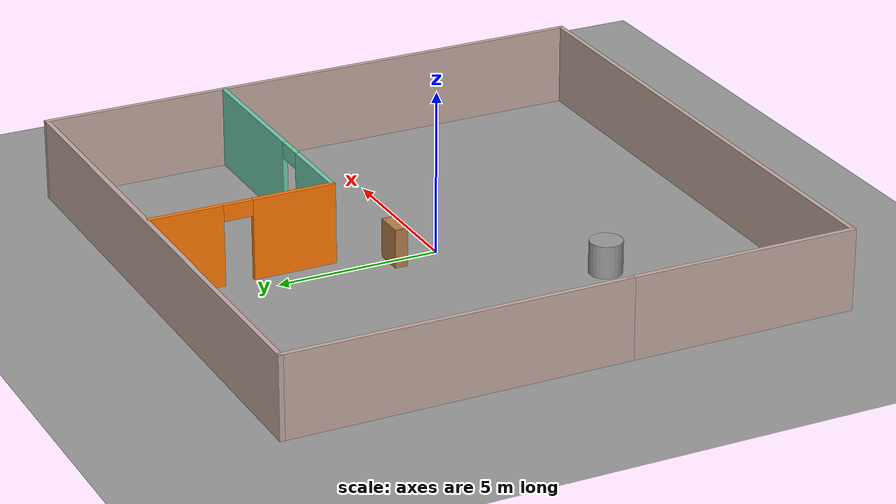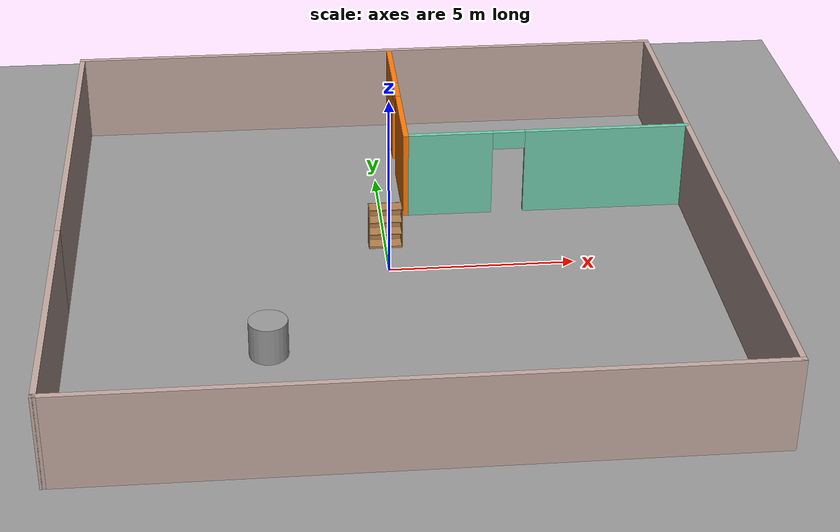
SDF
<sdf version="1.6">
 <world name="default">
  <light name="sun" type="directional">
   <pose>0 0 10 0 -0 0</pose>
   <diffuse>0.8 0.8 0.8 1</diffuse>
   <specular>0.2 0.2 0.2 1</specular>
   <attenuation>
    <range>1000</range>
    <constant>0.9</constant>
    <linear>0.01</linear>
    <quadratic>0.001</quadratic>
   </attenuation>
   <direction>0.5 0.1 -0.9</direction>
  </light>
  <scene><ambient>0.4 0.4 0.4 1</ambient><background>0.7 0.7 0.7 1</background><shadows>1</shadows></scene>
  <physics name="default_physics" default="0" type="ode">
   <max_step_size>0.01</max_step_size>
   <real_time_factor>1</real_time_factor>
   <real_time_update_rate>100</real_time_update_rate>
  </physics>
  <model name="bookshelf">
   <static>1</static>
   <link name="link">
    <inertial><mass>1</mass></inertial>
    <collision name="back">
     <pose>0 0.005 0.6 0 -0 0</pose>
     <geometry><box><size>0.9 0.01 1.2</size></box></geometry>
    </collision>
    <visual name="visual1">
     <pose>0 0.005 0.6 0 -0 0</pose>
     <geometry><box><size>0.9 0.01 1.2</size></box></geometry>
     <material>
      <script><uri>file://media/materials/scripts/gazebo.material</uri><name>Gazebo/Wood</name></script>
     </material>
    </visual>
    <collision name="left_side">
     <pose>0.45 -0.195 0.6 0 -0 0</pose>
     <geometry><box><size>0.02 0.4 1.2</size></box></geometry>
    </collision>
    <visual name="visual2">
     <pose>0.45 -0.195 0.6 0 -0 0</pose>
     <geometry><box><size>0.02 0.4 1.2</size></box></geometry>
     <material>
      <script><uri>file://media/materials/scripts/gazebo.material</uri><name>Gazebo/Wood</name></script>
     </material>
    </visual>
    <collision name="right_side">
     <pose>-0.45 -0.195 0.6 0 -0 0</pose>
     <geometry><box><size>0.02 0.4 1.2</size></box></geometry>
    </collision>
    <visual name="visual3">
     <pose>-0.45 -0.195 0.6 0 -0 0</pose>
     <geometry><box><size>0.02 0.4 1.2</size></box></geometry>
     <material>
      <script><uri>file://media/materials/scripts/gazebo.material</uri><name>Gazebo/Wood</name></script>
     </material>
    </visual>
    <collision name="bottom">
     <pose>0 -0.195 0.03 0 -0 0</pose>
     <geometry><box><size>0.88 0.4 0.06</size></box></geometry>
    </collision>
    <visual name="visual4">
     <pose>0 -0.195 0.03 0 -0 0</pose>
     <geometry><box><size>0.88 0.4 0.06</size></box></geometry>
     <material>
      <script><uri>file://media/materials/scripts/gazebo.material</uri><name>Gazebo/Wood</name></script>
     </material>
    </visual>
    <collision name="top">
     <pose>0 -0.195 1.19 0 -0 0</pose>
     <geometry><box><size>0.88 0.4 0.02</size></box></geometry>
    </collision>
    <visual name="visual5">
     <pose>0 -0.195 1.19 0 -0 0</pose>
     <geometry><box><size>0.88 0.4 0.02</size></box></geometry>
     <material>
      <script><uri>file://media/materials/scripts/gazebo.material</uri><name>Gazebo/Wood</name></script>
     </material>
    </visual>
    <collision name="low_shelf">
     <pose>0 -0.195 0.43 0 -0 0</pose>
     <geometry><box><size>0.88 0.4 0.02</size></box></geometry>
    </collision>
    <visual name="visual6">
     <pose>0 -0.195 0.43 0 -0 0</pose>
     <geometry><box><size>0.88 0.4 0.02</size></box></geometry>
     <material>
      <script><uri>file://media/materials/scripts/gazebo.material</uri><name>Gazebo/Wood</name></script>
     </material>
    </visual>
    <collision name="high_shelf">
     <pose>0 -0.195 0.8 0 -0 0</pose>
     <geometry><box><size>0.88 0.4 0.02</size></box></geometry>
    </collision>
    <visual name="visual7">
     <pose>0 -0.195 0.8 0 -0 0</pose>
     <geometry><box><size>0.88 0.4 0.02</size></box></geometry>
     <material>
      <script><uri>file://media/materials/scripts/gazebo.material</uri><name>Gazebo/Wood</name></script>
     </material>
    </visual>
    <velocity_decay><linear>0</linear><angular>0</angular></velocity_decay>
   </link>
   <pose>0 1.53026 0 0 -0 0</pose>
  </model>
  <model name="ground_plane_0">
   <static>1</static>
   <link name="link">
    <collision name="collision">
     <geometry><plane><normal>0 0 1</normal><size>100 100</size></plane></geometry>
     <surface><friction><ode><mu>100</mu><mu2>50</mu2></ode></friction></surface>
    </collision>
    <visual name="visual">
     <cast_shadows>0</cast_shadows>
     <geometry><plane><normal>0 0 1</normal><size>100 100</size></plane></geometry>
     <material>
      <script><uri>file://media/materials/scripts/gazebo.material</uri><name>Gazebo/Grey</name></script>
     </material>
    </visual>
    <velocity_decay><linear>0</linear><angular>0</angular></velocity_decay>
   </link>
   <pose>0.497681 0 0 0 -0 0</pose>
  </model>
  <model name="unit_cylinder_1">
   <pose>-3.3173 -3.77198 0.49912 0 -0 0</pose>
   <link name="link">
    <inertial>
     <mass>1</mass>
     <inertia><ixx>1</ixx><ixy>0</ixy><ixz>0</ixz><iyy>1</iyy><iyz>0</iyz><izz>1</izz></inertia>
    </inertial>
    <collision name="collision">
     <geometry><cylinder><radius>0.5</radius><length>1</length></cylinder></geometry>
    </collision>
    <visual name="visual">
     <geometry><cylinder><radius>0.5</radius><length>1</length></cylinder></geometry>
     <material>
      <script><uri>file://media/materials/scripts/gazebo.material</uri><name>Gazebo/Grey</name></script>
     </material>
    </visual>
    <velocity_decay><linear>0</linear><angular>0</angular></velocity_decay>
   </link>
   <static>0</static>
  </model>
  <gravity>0 0 -9.8</gravity>
  <magnetic_field>6e-06 2.3e-05 -4.2e-05</magnetic_field>
  <atmosphere type="adiabatic"/>
  <spherical_coordinates>
   <surface_model>EARTH_WGS84</surface_model>
   <latitude_deg>0</latitude_deg>
   <longitude_deg>0</longitude_deg>
   <elevation>0</elevation>
   <heading_deg>0</heading_deg>
  </spherical_coordinates>
  <model name="simple">
   <pose>0.05477 0.00073 0 0 -0 0</pose>
   <link name="Wall_10">
    <pose>4.57118 2.97139 0 0 -0 0</pose>
    <visual name="Wall_10_Visual_0">
     <pose>-2.74976 0 1.25 0 -0 0</pose>
     <geometry><box><size>2.50048 0.15 2.5</size></box></geometry>
     <material>
      <script><uri>file://media/materials/scripts/gazebo.material</uri><name>Gazebo/Grey</name></script>
      <ambient>0.435294 0.796078 0.67451 1</ambient>
     </material>
    </visual>
    <collision name="Wall_10_Collision_0">
     <geometry><box><size>2.50048 0.15 2.5</size></box></geometry>
     <pose>-2.74976 0 1.25 0 -0 0</pose>
    </collision>
    <visual name="Wall_10_Visual_1">
     <pose>1.70024 0 1.25 0 -0 0</pose>
     <geometry><box><size>4.59952 0.15 2.5</size></box></geometry>
     <material>
      <script><uri>file://media/materials/scripts/gazebo.material</uri><name>Gazebo/Grey</name></script>
      <ambient>0.435294 0.796078 0.67451 1</ambient>
     </material>
    </visual>
    <collision name="Wall_10_Collision_1">
     <geometry><box><size>4.59952 0.15 2.5</size></box></geometry>
     <pose>1.70024 0 1.25 0 -0 0</pose>
    </collision>
    <visual name="Wall_10_Visual_2">
     <pose>-1.04952 0 2.25 0 -0 0</pose>
     <geometry><box><size>0.9 0.15 0.5</size></box></geometry>
     <material>
      <script><uri>file://media/materials/scripts/gazebo.material</uri><name>Gazebo/Grey</name></script>
      <ambient>0.435294 0.796078 0.67451 1</ambient>
     </material>
    </visual>
    <collision name="Wall_10_Collision_2">
     <geometry><box><size>0.9 0.15 0.5</size></box></geometry>
     <pose>-1.04952 0 2.25 0 -0 0</pose>
    </collision>
   </link>
   <link name="Wall_2">
    <collision name="Wall_2_Collision">
     <geometry><box><size>7.25 0.15 2.5</size></box></geometry>
     <pose>0 0 1.25 0 -0 0</pose>
    </collision>
    <visual name="Wall_2_Visual">
     <pose>0 0 1.25 0 -0 0</pose>
     <geometry><box><size>7.25 0.15 2.5</size></box></geometry>
     <material>
      <script><uri>file://media/materials/scripts/gazebo.material</uri><name>Gazebo/Grey</name></script>
      <ambient>0.760784 0.662745 0.627451 1</ambient>
     </material>
    </visual>
    <pose>-8.55 -5.125 0 0 0 -1.5708</pose>
   </link>
   <link name="Wall_3">
    <collision name="Wall_3_Collision">
     <geometry><box><size>17.25 0.15 2.5</size></box></geometry>
     <pose>0 0 1.25 0 -0 0</pose>
    </collision>
    <visual name="Wall_3_Visual">
     <pose>0 0 1.25 0 -0 0</pose>
     <geometry><box><size>17.25 0.15 2.5</size></box></geometry>
     <material>
      <script><uri>file://media/materials/scripts/gazebo.material</uri><name>Gazebo/Grey</name></script>
      <ambient>0.760784 0.662745 0.627451 1</ambient>
     </material>
    </visual>
    <pose>0 -8.675 0 0 -0 0</pose>
   </link>
   <link name="Wall_4">
    <collision name="Wall_4_Collision">
     <geometry><box><size>17.5 0.15 2.5</size></box></geometry>
     <pose>0 0 1.25 0 -0 0</pose>
    </collision>
    <visual name="Wall_4_Visual">
     <pose>0 0 1.25 0 -0 0</pose>
     <geometry><box><size>17.5 0.15 2.5</size></box></geometry>
     <material>
      <script><uri>file://media/materials/scripts/gazebo.material</uri><name>Gazebo/Grey</name></script>
      <ambient>0.760784 0.662745 0.627451 1</ambient>
     </material>
    </visual>
    <pose>8.55 0 0 0 -0 1.5708</pose>
   </link>
   <link name="Wall_5">
    <collision name="Wall_5_Collision">
     <geometry><box><size>17.25 0.15 2.5</size></box></geometry>
     <pose>0 0 1.25 0 -0 0</pose>
    </collision>
    <visual name="Wall_5_Visual">
     <pose>0 0 1.25 0 -0 0</pose>
     <geometry><box><size>17.25 0.15 2.5</size></box></geometry>
     <material>
      <script><uri>file://media/materials/scripts/gazebo.material</uri><name>Gazebo/Grey</name></script>
      <ambient>0.760784 0.662745 0.627451 1</ambient>
     </material>
    </visual>
    <pose>0 8.675 0 0 -0 3.14159</pose>
   </link>
   <link name="Wall_6">
    <collision name="Wall_6_Collision">
     <geometry><box><size>10.5 0.15 2.5</size></box></geometry>
     <pose>0 0 1.25 0 -0 0</pose>
    </collision>
    <visual name="Wall_6_Visual">
     <pose>0 0 1.25 0 -0 0</pose>
     <geometry><box><size>10.5 0.15 2.5</size></box></geometry>
     <material>
      <script><uri>file://media/materials/scripts/gazebo.material</uri><name>Gazebo/Grey</name></script>
      <ambient>0.760784 0.662745 0.627451 1</ambient>
     </material>
    </visual>
    <pose>-8.55 3.5 0 0 0 -1.5708</pose>
   </link>
   <link name="Wall_9">
    <pose>0.646178 5.77139 0 0 0 -1.5708</pose>
    <visual name="Wall_9_Visual_0">
     <pose>-1.73182 0 1.25 0 -0 0</pose>
     <geometry><box><size>2.28635 0.15 2.5</size></box></geometry>
     <material>
      <script><uri>file://media/materials/scripts/gazebo.material</uri><name>Gazebo/Grey</name></script>
      <ambient>0.996078 0.47451 0.0196078 1</ambient>
     </material>
    </visual>
    <collision name="Wall_9_Collision_0">
     <geometry><box><size>2.28635 0.15 2.5</size></box></geometry>
     <pose>-1.73182 0 1.25 0 -0 0</pose>
    </collision>
    <visual name="Wall_9_Visual_1">
     <pose>1.59318 0 1.25 0 -0 0</pose>
     <geometry><box><size>2.56365 0.15 2.5</size></box></geometry>
     <material>
      <script><uri>file://media/materials/scripts/gazebo.material</uri><name>Gazebo/Grey</name></script>
      <ambient>0.996078 0.47451 0.0196078 1</ambient>
     </material>
    </visual>
    <collision name="Wall_9_Collision_1">
     <geometry><box><size>2.56365 0.15 2.5</size></box></geometry>
     <pose>1.59318 0 1.25 0 -0 0</pose>
    </collision>
    <visual name="Wall_9_Visual_2">
     <pose>-0.13865 0 2.25 0 -0 0</pose>
     <geometry><box><size>0.9 0.15 0.5</size></box></geometry>
     <material>
      <script><uri>file://media/materials/scripts/gazebo.material</uri><name>Gazebo/Grey</name></script>
      <ambient>0.996078 0.47451 0.0196078 1</ambient>
     </material>
    </visual>
    <collision name="Wall_9_Collision_2">
     <geometry><box><size>0.9 0.15 0.5</size></box></geometry>
     <pose>-0.13865 0 2.25 0 -0 0</pose>
    </collision>
   </link>
   <static>1</static>
  </model>
 </world>
</sdf>
